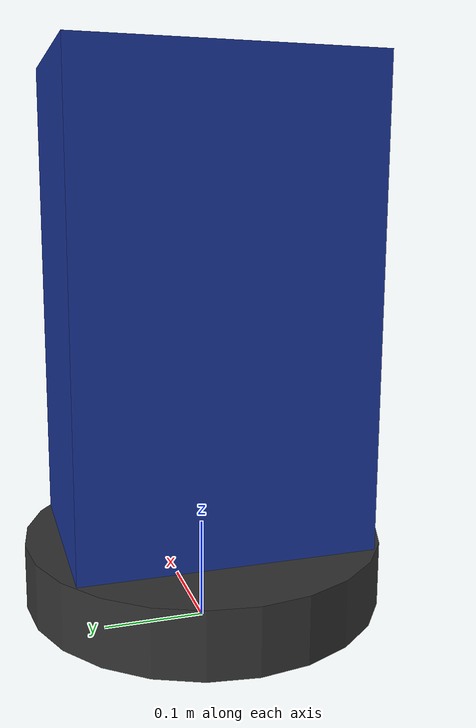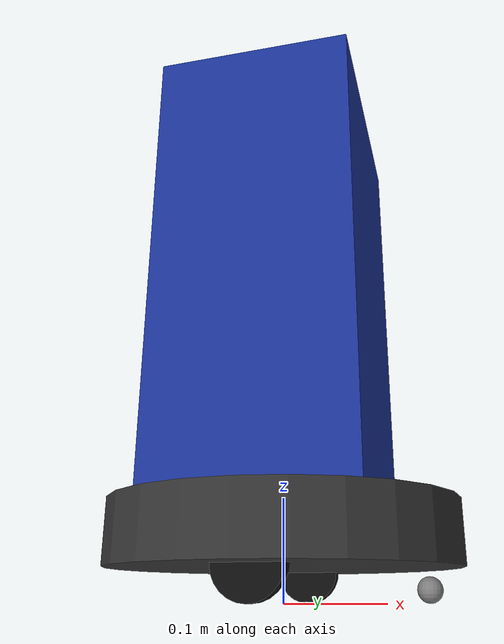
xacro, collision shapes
<?xml version="1.0"?>
<robot xmlns:xacro="http://www.ros.org/wiki/xacro">

  <!-- Materials -->
  <material name="dark_grey"><color rgba="0.2 0.2 0.2 1.0"/></material>
  <material name="blue"><color rgba="0.1 0.2 0.6 1.0"/></material>
  <material name="black"><color rgba="0.05 0.05 0.05 1.0"/></material>
  <material name="grey"><color rgba="0.5 0.5 0.5 1.0"/></material>

  <link name="base_footprint"/>

  <joint name="base_footprint_joint" type="fixed">
    <parent link="base_footprint"/>
    <child link="base_link"/>
    <origin xyz="0 0 0.0325" rpy="0 0 0"/>
  </joint>

  <!-- ================= BASE (Xiaomi T12) ================= -->
  <link name="base_link">
    <visual>
      <origin xyz="0 0 0.0315" rpy="0 0 0"/>
      <!-- VISUALLY ACCURATE MESH -->
      <geometry><mesh filename="package://underbot_description/meshes/base.stl"/></geometry>
      <material name="dark_grey"/>
    </visual>
    <collision>
      <origin xyz="0 0 0.0315" rpy="0 0 0"/>
      <!-- INVISIBLE SIMPLE COLLISION FOR PERFECT PHYSICS -->
      <geometry><cylinder radius="0.175" length="0.063"/></geometry>
    </collision>
    <xacro:cylinder_inertia m="3.6" r="0.175" h="0.063"/>
  </link>

  <!-- ================= WHEELS ================= -->
  <link name="left_wheel">
    <visual>
      <origin xyz="0 0 0" rpy="${pi/2} 0 0"/>
      <geometry><mesh filename="package://underbot_description/meshes/wheel.stl"/></geometry>
      <material name="black"/>
    </visual>
    <collision>
      <origin xyz="0 0 0" rpy="${pi/2} 0 0"/>
      <geometry><cylinder radius="0.0325" length="0.016"/></geometry>
    </collision>
    <xacro:wheel_inertia m="0.15" r="0.0325" h="0.016"/>
  </link>
  <joint name="left_wheel_joint" type="continuous">
    <parent link="base_link"/>
    <child link="left_wheel"/>
    <origin xyz="0 0.120 0" rpy="0 0 0"/>
    <axis xyz="0 1 0"/>
    <dynamics damping="0.1" friction="0.05"/>
  </joint>

  <link name="right_wheel">
    <visual>
      <origin xyz="0 0 0" rpy="${pi/2} 0 0"/>
      <geometry><mesh filename="package://underbot_description/meshes/wheel.stl"/></geometry>
      <material name="black"/>
    </visual>
    <collision>
      <origin xyz="0 0 0" rpy="${pi/2} 0 0"/>
      <geometry><cylinder radius="0.0325" length="0.016"/></geometry>
    </collision>
    <xacro:wheel_inertia m="0.15" r="0.0325" h="0.016"/>
  </link>
  <joint name="right_wheel_joint" type="continuous">
    <parent link="base_link"/>
    <child link="right_wheel"/>
    <origin xyz="0 -0.120 0" rpy="0 0 0"/>
    <axis xyz="0 1 0"/>
    <dynamics damping="0.1" friction="0.05"/>
  </joint>

  <!-- Caster Wheel -->
  <link name="caster_wheel">
    <visual>
      <origin xyz="0 0 0" rpy="0 0 0"/>
      <geometry><sphere radius="0.012"/></geometry>
      <material name="grey"/>
    </visual>
    <collision>
      <origin xyz="0 0 0" rpy="0 0 0"/>
      <geometry><sphere radius="0.012"/></geometry>
    </collision>
    <xacro:sphere_inertia m="0.05" r="0.012"/>
  </link>
  <joint name="caster_wheel_joint" type="fixed">
    <parent link="base_link"/>
    <child link="caster_wheel"/>
    <origin xyz="0.140 0 -0.0205" rpy="0 0 0"/>
  </joint>

  <!-- ================= BODY COLUMN (Torso) ================= -->
  <link name="body_column">
    <visual>
      <origin xyz="0 0 0.225" rpy="0 0 0"/>
      <geometry><mesh filename="package://underbot_description/meshes/body_column.stl"/></geometry>
      <material name="blue"/>
    </visual>
    <collision>
      <origin xyz="0 0 0.225" rpy="0 0 0"/>
      <geometry><box size="0.20 0.28 0.45"/></geometry>
    </collision>
    <inertial>
      <origin xyz="-0.03 0 0.15" rpy="0 0 0"/>
      <mass value="2.0"/>
      <inertia ixx="0.0468" ixy="0.0" ixz="0.0" iyy="0.0404" iyz="0.0" izz="0.0197"/>
    </inertial>
  </link>
  <joint name="body_column_joint" type="fixed">
    <parent link="base_link"/>
    <child link="body_column"/>
    <origin xyz="0 0 0.063" rpy="0 0 0"/>
  </joint>

</robot>
